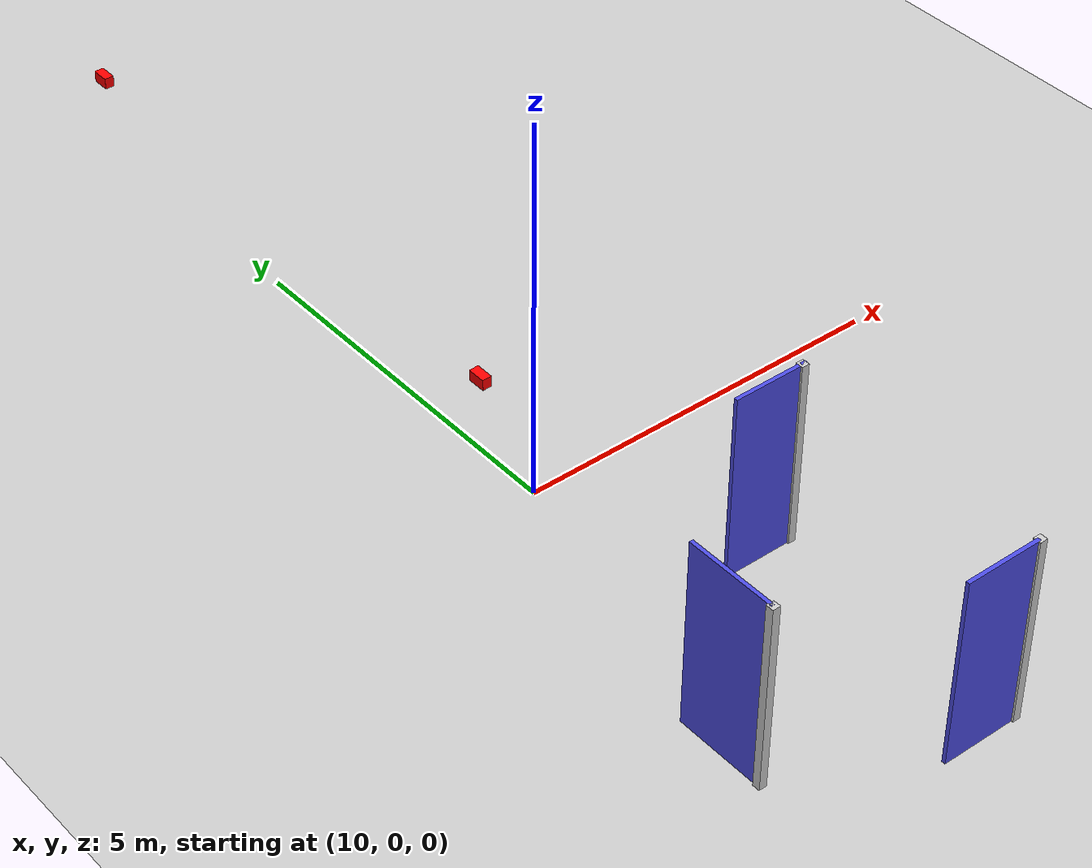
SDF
<sdf version="1.7">
 <world name="default">
  <model name="ground_plane">
   <static>1</static>
   <link name="link">
    <collision name="collision">
     <geometry><plane><normal>0 0 1</normal><size>100 100</size></plane></geometry>
     <surface><friction><ode><mu>100</mu><mu2>50</mu2></ode></friction></surface>
    </collision>
    <visual name="visual">
     <cast_shadows>0</cast_shadows>
     <geometry><plane><normal>0 0 1</normal><size>100 100</size></plane></geometry>
     <material>
      <script><uri>file://media/materials/scripts/gazebo.material</uri><name>Gazebo/Grey</name></script>
     </material>
    </visual>
   </link>
  </model>
  <model name="door_2">
   <link name="door_frame">
    <pose>0.25 -0 1.25 0 -0 0</pose>
    <kinematic>1</kinematic>
    <inertial>
     <inertia><ixx>1</ixx><ixy>0</ixy><ixz>0</ixz><iyy>1</iyy><iyz>0</iyz><izz>1</izz></inertia>
     <mass>1</mass>
    </inertial>
    <visual name="frame_visual">
     <geometry><box><size>0.1 0.1 2.5</size></box></geometry>
     <material>
      <ambient>0.7 0.7 0.7 1</ambient>
      <diffuse>0.8 0.8 0.8 1</diffuse>
      <shader type="pixel"><normal_map>__default__</normal_map></shader>
      <script><name>ModelPreview_2::door_frame::frame_visual_MATERIAL_</name><uri>__default__</uri></script>
      <specular>0 0 0 1</specular>
      <emissive>0 0 0 1</emissive>
     </material>
    </visual>
    <collision name="frame_collision">
     <geometry><box><size>0.1 0.1 2.5</size></box></geometry>
     <surface>
      <friction>
       <ode><mu>1</mu><mu2>1</mu2><fdir1>0 0 0</fdir1><slip1>0</slip1><slip2>0</slip2></ode>
       <torsional>
        <coefficient>1</coefficient>
        <patch_radius>0</patch_radius>
        <surface_radius>0</surface_radius>
        <use_patch_radius>1</use_patch_radius>
        <ode><slip>0</slip></ode>
       </torsional>
      </friction>
      <bounce><restitution_coefficient>0</restitution_coefficient><threshold>1e+06</threshold></bounce>
      <contact>
       <collide_without_contact>0</collide_without_contact>
       <collide_without_contact_bitmask>1</collide_without_contact_bitmask>
       <collide_bitmask>1</collide_bitmask>
       <ode>
        <soft_cfm>0</soft_cfm>
        <soft_erp>0.2</soft_erp>
        <kp>1e+13</kp>
        <kd>1</kd>
        <max_vel>0.01</max_vel>
        <min_depth>0</min_depth>
       </ode>
       <bullet>
        <split_impulse>1</split_impulse>
        <split_impulse_penetration_threshold>-0.01</split_impulse_penetration_threshold>
        <soft_cfm>0</soft_cfm>
        <soft_erp>0.2</soft_erp>
        <kp>1e+13</kp>
        <kd>1</kd>
       </bullet>
      </contact>
     </surface>
    </collision>
   </link>
   <link name="door">
    <kinematic>1</kinematic>
    <pose>-0.335256 -0 1.25 0 -0 0</pose>
    <inertial>
     <inertia><ixx>1.2306</ixx><ixy>0</ixy><ixz>0</ixz><iyy>1.50458</iyy><iyz>0</iyz><izz>0.27496</izz></inertia>
     <mass>2.36181</mass>
    </inertial>
    <visual name="door_visual">
     <geometry><box><size>1.1809 0.05 2.5</size></box></geometry>
     <material>
      <ambient>0.2 0.2 0.8 1</ambient>
      <diffuse>0.3 0.3 0.9 1</diffuse>
      <shader type="pixel"/>
      <script><name>ModelPreview_2::door::door_visual_MATERIAL_</name><uri>__default__</uri></script>
     </material>
    </visual>
    <collision name="door_collision">
     <geometry><box><size>1.1809 0.05 2.5</size></box></geometry>
     <surface>
      <friction>
       <ode><mu>1</mu><mu2>1</mu2><fdir1>0 0 0</fdir1><slip1>0</slip1><slip2>0</slip2></ode>
       <torsional>
        <coefficient>1</coefficient>
        <patch_radius>0</patch_radius>
        <surface_radius>0</surface_radius>
        <use_patch_radius>1</use_patch_radius>
        <ode><slip>0</slip></ode>
       </torsional>
      </friction>
      <bounce><restitution_coefficient>0</restitution_coefficient><threshold>1e+06</threshold></bounce>
      <contact>
       <collide_without_contact>0</collide_without_contact>
       <collide_without_contact_bitmask>1</collide_without_contact_bitmask>
       <collide_bitmask>1</collide_bitmask>
       <ode>
        <soft_cfm>0</soft_cfm>
        <soft_erp>0.2</soft_erp>
        <kp>1e+13</kp>
        <kd>1</kd>
        <max_vel>0.01</max_vel>
        <min_depth>0</min_depth>
       </ode>
       <bullet>
        <split_impulse>1</split_impulse>
        <split_impulse_penetration_threshold>-0.01</split_impulse_penetration_threshold>
        <soft_cfm>0</soft_cfm>
        <soft_erp>0.2</soft_erp>
        <kp>1e+13</kp>
        <kd>1</kd>
       </bullet>
      </contact>
     </surface>
    </collision>
   </link>
   <joint name="door_joint" type="prismatic">
    <parent>door_frame</parent>
    <child>door</child>
    <axis>
     <xyz>1 0 0</xyz>
     <limit><lower>0</lower><upper>2</upper><effort>-1</effort><velocity>-1</velocity></limit>
     <dynamics>
      <spring_reference>0</spring_reference>
      <spring_stiffness>0</spring_stiffness>
      <damping>0</damping>
      <friction>0</friction>
     </dynamics>
    </axis>
    <physics>
     <ode><limit><cfm>0</cfm><erp>0.2</erp></limit><suspension><cfm>0</cfm><erp>0.2</erp></suspension></ode>
    </physics>
   </joint>
   <static>0</static>
   <plugin name="door_control_plugin" filename="libdoor_control_plugin.so">
    <door_joint>door_joint</door_joint>
    <speed>1.0</speed>
    <open_target>1.0</open_target>
    <close_target>0.0</close_target>
   </plugin>
   <pose>8.96591 -4.63073 0 0 0 -1.56674</pose>
  </model>
  <model name="door_3">
   <link name="door_frame">
    <pose>0.25 0 1.25 0 -0 0</pose>
    <kinematic>1</kinematic>
    <inertial>
     <inertia><ixx>1</ixx><ixy>0</ixy><ixz>0</ixz><iyy>1</iyy><iyz>0</iyz><izz>1</izz></inertia>
     <mass>1</mass>
    </inertial>
    <visual name="frame_visual">
     <geometry><box><size>0.1 0.1 2.5</size></box></geometry>
     <material>
      <ambient>0.7 0.7 0.7 1</ambient>
      <diffuse>0.8 0.8 0.8 1</diffuse>
      <shader type="pixel"><normal_map>__default__</normal_map></shader>
      <script><name>ModelPreview_1::door_frame::frame_visual_MATERIAL_</name><uri>__default__</uri></script>
      <specular>0 0 0 1</specular>
      <emissive>0 0 0 1</emissive>
     </material>
    </visual>
    <collision name="frame_collision">
     <geometry><box><size>0.1 0.1 2.5</size></box></geometry>
     <surface>
      <friction>
       <ode><mu>1</mu><mu2>1</mu2><fdir1>0 0 0</fdir1><slip1>0</slip1><slip2>0</slip2></ode>
       <torsional>
        <coefficient>1</coefficient>
        <patch_radius>0</patch_radius>
        <surface_radius>0</surface_radius>
        <use_patch_radius>1</use_patch_radius>
        <ode><slip>0</slip></ode>
       </torsional>
      </friction>
      <bounce><restitution_coefficient>0</restitution_coefficient><threshold>1e+06</threshold></bounce>
      <contact>
       <collide_without_contact>0</collide_without_contact>
       <collide_without_contact_bitmask>1</collide_without_contact_bitmask>
       <collide_bitmask>1</collide_bitmask>
       <ode>
        <soft_cfm>0</soft_cfm>
        <soft_erp>0.2</soft_erp>
        <kp>1e+13</kp>
        <kd>1</kd>
        <max_vel>0.01</max_vel>
        <min_depth>0</min_depth>
       </ode>
       <bullet>
        <split_impulse>1</split_impulse>
        <split_impulse_penetration_threshold>-0.01</split_impulse_penetration_threshold>
        <soft_cfm>0</soft_cfm>
        <soft_erp>0.2</soft_erp>
        <kp>1e+13</kp>
        <kd>1</kd>
       </bullet>
      </contact>
     </surface>
    </collision>
   </link>
   <link name="door">
    <kinematic>1</kinematic>
    <pose>-0.261545 0 1.25 0 -0 0</pose>
    <inertial>
     <inertia>
      <ixx>0.75177</ixx>
      <ixy>0</ixy>
      <ixz>0</ixz>
      <iyy>0.814042</iyy>
      <iyz>0</iyz>
      <izz>0.062873</izz>
     </inertia>
     <mass>1.44282</mass>
    </inertial>
    <visual name="door_visual">
     <geometry><box><size>1 0.05 2.5</size></box></geometry>
     <material>
      <ambient>0.2 0.2 0.8 1</ambient>
      <diffuse>0.3 0.3 0.9 1</diffuse>
      <shader type="pixel"><normal_map>__default__</normal_map></shader>
      <script><name>ModelPreview_1::door::door_visual_MATERIAL_</name><uri>__default__</uri></script>
      <specular>0 0 0 1</specular>
      <emissive>0 0 0 1</emissive>
     </material>
    </visual>
    <collision name="door_collision">
     <geometry><box><size>1 0.05 2.5</size></box></geometry>
     <surface>
      <friction>
       <ode><mu>1</mu><mu2>1</mu2><fdir1>0 0 0</fdir1><slip1>0</slip1><slip2>0</slip2></ode>
       <torsional>
        <coefficient>1</coefficient>
        <patch_radius>0</patch_radius>
        <surface_radius>0</surface_radius>
        <use_patch_radius>1</use_patch_radius>
        <ode><slip>0</slip></ode>
       </torsional>
      </friction>
      <bounce><restitution_coefficient>0</restitution_coefficient><threshold>1e+06</threshold></bounce>
      <contact>
       <collide_without_contact>0</collide_without_contact>
       <collide_without_contact_bitmask>1</collide_without_contact_bitmask>
       <collide_bitmask>1</collide_bitmask>
       <ode>
        <soft_cfm>0</soft_cfm>
        <soft_erp>0.2</soft_erp>
        <kp>1e+13</kp>
        <kd>1</kd>
        <max_vel>0.01</max_vel>
        <min_depth>0</min_depth>
       </ode>
       <bullet>
        <split_impulse>1</split_impulse>
        <split_impulse_penetration_threshold>-0.01</split_impulse_penetration_threshold>
        <soft_cfm>0</soft_cfm>
        <soft_erp>0.2</soft_erp>
        <kp>1e+13</kp>
        <kd>1</kd>
       </bullet>
      </contact>
     </surface>
    </collision>
   </link>
   <joint name="door_joint" type="prismatic">
    <parent>door_frame</parent>
    <child>door</child>
    <axis>
     <xyz>1 0 0</xyz>
     <limit><lower>0</lower><upper>2</upper><effort>-1</effort><velocity>-1</velocity></limit>
     <dynamics>
      <spring_reference>0</spring_reference>
      <spring_stiffness>0</spring_stiffness>
      <damping>0</damping>
      <friction>0</friction>
     </dynamics>
    </axis>
    <physics>
     <ode><limit><cfm>0</cfm><erp>0.2</erp></limit><suspension><cfm>0</cfm><erp>0.2</erp></suspension></ode>
    </physics>
   </joint>
   <static>0</static>
   <plugin name="door_control_plugin" filename="libdoor_control_plugin.so">
    <door_joint>door_joint</door_joint>
    <speed>1.0</speed>
    <open_target>1.0</open_target>
    <close_target>0.0</close_target>
   </plugin>
   <pose>11.3937 -5.81972 0 0 -0 0</pose>
  </model>
  <model name="door_4">
   <link name="door_frame">
    <pose>0.25 0 1.25 0 -0 0</pose>
    <kinematic>1</kinematic>
    <inertial>
     <inertia><ixx>1</ixx><ixy>0</ixy><ixz>0</ixz><iyy>1</iyy><iyz>0</iyz><izz>1</izz></inertia>
     <mass>1</mass>
    </inertial>
    <visual name="frame_visual">
     <geometry><box><size>0.1 0.1 2.5</size></box></geometry>
     <material>
      <ambient>0.7 0.7 0.7 1</ambient>
      <diffuse>0.8 0.8 0.8 1</diffuse>
      <shader type="pixel"><normal_map>__default__</normal_map></shader>
      <script><name>ModelPreview_1::door_frame::frame_visual_MATERIAL_</name><uri>__default__</uri></script>
      <specular>0 0 0 1</specular>
      <emissive>0 0 0 1</emissive>
     </material>
    </visual>
    <collision name="frame_collision">
     <geometry><box><size>0.1 0.1 2.5</size></box></geometry>
     <surface>
      <friction>
       <ode><mu>1</mu><mu2>1</mu2><fdir1>0 0 0</fdir1><slip1>0</slip1><slip2>0</slip2></ode>
       <torsional>
        <coefficient>1</coefficient>
        <patch_radius>0</patch_radius>
        <surface_radius>0</surface_radius>
        <use_patch_radius>1</use_patch_radius>
        <ode><slip>0</slip></ode>
       </torsional>
      </friction>
      <bounce><restitution_coefficient>0</restitution_coefficient><threshold>1e+06</threshold></bounce>
      <contact>
       <collide_without_contact>0</collide_without_contact>
       <collide_without_contact_bitmask>1</collide_without_contact_bitmask>
       <collide_bitmask>1</collide_bitmask>
       <ode>
        <soft_cfm>0</soft_cfm>
        <soft_erp>0.2</soft_erp>
        <kp>1e+13</kp>
        <kd>1</kd>
        <max_vel>0.01</max_vel>
        <min_depth>0</min_depth>
       </ode>
       <bullet>
        <split_impulse>1</split_impulse>
        <split_impulse_penetration_threshold>-0.01</split_impulse_penetration_threshold>
        <soft_cfm>0</soft_cfm>
        <soft_erp>0.2</soft_erp>
        <kp>1e+13</kp>
        <kd>1</kd>
       </bullet>
      </contact>
     </surface>
    </collision>
   </link>
   <link name="door">
    <kinematic>1</kinematic>
    <pose>-0.195697 0 1.25 0 -0 0</pose>
    <inertial>
     <inertia>
      <ixx>0.971443</ixx>
      <ixy>0</ixy>
      <ixz>0</ixz>
      <iyy>1.10607</iyy>
      <iyz>0</iyz>
      <izz>0.135403</izz>
     </inertia>
     <mass>1.86443</mass>
    </inertial>
    <visual name="door_visual">
     <geometry><box><size>1 0.05 2.5</size></box></geometry>
     <material>
      <ambient>0.2 0.2 0.8 1</ambient>
      <diffuse>0.3 0.3 0.9 1</diffuse>
      <shader type="pixel"><normal_map>__default__</normal_map></shader>
      <script><name>ModelPreview_1::door::door_visual_MATERIAL_</name><uri>__default__</uri></script>
      <specular>0 0 0 1</specular>
      <emissive>0 0 0 1</emissive>
     </material>
    </visual>
    <collision name="door_collision">
     <geometry><box><size>1 0.05 2.5</size></box></geometry>
     <surface>
      <friction>
       <ode><mu>1</mu><mu2>1</mu2><fdir1>0 0 0</fdir1><slip1>0</slip1><slip2>0</slip2></ode>
       <torsional>
        <coefficient>1</coefficient>
        <patch_radius>0</patch_radius>
        <surface_radius>0</surface_radius>
        <use_patch_radius>1</use_patch_radius>
        <ode><slip>0</slip></ode>
       </torsional>
      </friction>
      <bounce><restitution_coefficient>0</restitution_coefficient><threshold>1e+06</threshold></bounce>
      <contact>
       <collide_without_contact>0</collide_without_contact>
       <collide_without_contact_bitmask>1</collide_without_contact_bitmask>
       <collide_bitmask>1</collide_bitmask>
       <ode>
        <soft_cfm>0</soft_cfm>
        <soft_erp>0.2</soft_erp>
        <kp>1e+13</kp>
        <kd>1</kd>
        <max_vel>0.01</max_vel>
        <min_depth>0</min_depth>
       </ode>
       <bullet>
        <split_impulse>1</split_impulse>
        <split_impulse_penetration_threshold>-0.01</split_impulse_penetration_threshold>
        <soft_cfm>0</soft_cfm>
        <soft_erp>0.2</soft_erp>
        <kp>1e+13</kp>
        <kd>1</kd>
       </bullet>
      </contact>
     </surface>
    </collision>
   </link>
   <joint name="door_joint" type="prismatic">
    <parent>door_frame</parent>
    <child>door</child>
    <axis>
     <xyz>1 0 0</xyz>
     <limit><lower>0</lower><upper>2</upper><effort>-1</effort><velocity>-1</velocity></limit>
     <dynamics>
      <spring_reference>0</spring_reference>
      <spring_stiffness>0</spring_stiffness>
      <damping>0</damping>
      <friction>0</friction>
     </dynamics>
    </axis>
    <physics>
     <ode><limit><cfm>0</cfm><erp>0.2</erp></limit><suspension><cfm>0</cfm><erp>0.2</erp></suspension></ode>
    </physics>
   </joint>
   <static>0</static>
   <plugin name="door_control_plugin" filename="libdoor_control_plugin.so">
    <door_joint>door_joint</door_joint>
    <speed>1.0</speed>
    <open_target>1.0</open_target>
    <close_target>0.0</close_target>
   </plugin>
   <pose>11.452 -2.37137 0 0 -0 0</pose>
  </model>
  <model name="Lidar_2">
   <link name="link_1">
    <inertial>
     <mass>0.00014111</mass>
     <inertia><ixx>7e-08</ixx><ixy>0</ixy><ixz>0</ixz><iyy>7e-08</iyy><iyz>0</iyz><izz>6e-08</izz></inertia>
    </inertial>
    <visual name="visual">
     <geometry><box><size>0.048286 0.048861 0.059852</size></box></geometry>
     <material>
      <lighting>1</lighting>
      <script><uri>file://media/materials/scripts/gazebo.material</uri><name>Gazebo/Grey</name></script>
      <shader type="pixel"><normal_map>__default__</normal_map></shader>
      <ambient>1 0 0 1</ambient>
      <diffuse>0.7 0.7 0.7 1</diffuse>
      <specular>0.01 0.01 0.01 1</specular>
      <emissive>0 0 0 1</emissive>
     </material>
    </visual>
    <collision name="collision">
     <geometry><box><size>0.048286 0.048861 0.059852</size></box></geometry>
     <surface>
      <friction>
       <ode><mu>1</mu><mu2>1</mu2><fdir1>0 0 0</fdir1><slip1>0</slip1><slip2>0</slip2></ode>
       <torsional>
        <coefficient>1</coefficient>
        <patch_radius>0</patch_radius>
        <surface_radius>0</surface_radius>
        <use_patch_radius>1</use_patch_radius>
        <ode><slip>0</slip></ode>
       </torsional>
      </friction>
      <bounce><restitution_coefficient>0</restitution_coefficient><threshold>1e+06</threshold></bounce>
      <contact>
       <collide_without_contact>0</collide_without_contact>
       <collide_without_contact_bitmask>1</collide_without_contact_bitmask>
       <collide_bitmask>1</collide_bitmask>
       <ode>
        <soft_cfm>0</soft_cfm>
        <soft_erp>0.2</soft_erp>
        <kp>1e+13</kp>
        <kd>1</kd>
        <max_vel>0.01</max_vel>
        <min_depth>0</min_depth>
       </ode>
       <bullet>
        <split_impulse>1</split_impulse>
        <split_impulse_penetration_threshold>-0.01</split_impulse_penetration_threshold>
        <soft_cfm>0</soft_cfm>
        <soft_erp>0.2</soft_erp>
        <kp>1e+13</kp>
        <kd>1</kd>
       </bullet>
      </contact>
     </surface>
    </collision>
   </link>
   <static>0</static>
   <pose>9.018 -4.57279 0.029926 1e-06 0 1.56291</pose>
  </model>
  <model name="Lidar_4">
   <link name="link_1">
    <inertial>
     <mass>0.00014111</mass>
     <inertia><ixx>7e-08</ixx><ixy>0</ixy><ixz>0</ixz><iyy>7e-08</iyy><iyz>0</iyz><izz>6e-08</izz></inertia>
    </inertial>
    <visual name="visual">
     <geometry><box><size>0.048286 0.048861 0.059852</size></box></geometry>
     <material>
      <lighting>1</lighting>
      <script><uri>file://media/materials/scripts/gazebo.material</uri><name>Gazebo/Grey</name></script>
      <shader type="pixel"><normal_map>__default__</normal_map></shader>
      <ambient>1 0 0 1</ambient>
      <diffuse>0.7 0.7 0.7 1</diffuse>
      <specular>0.01 0.01 0.01 1</specular>
      <emissive>0 0 0 1</emissive>
     </material>
    </visual>
    <collision name="collision">
     <geometry><box><size>0.048286 0.048861 0.059852</size></box></geometry>
     <surface>
      <friction>
       <ode><mu>1</mu><mu2>1</mu2><fdir1>0 0 0</fdir1><slip1>0</slip1><slip2>0</slip2></ode>
       <torsional>
        <coefficient>1</coefficient>
        <patch_radius>0</patch_radius>
        <surface_radius>0</surface_radius>
        <use_patch_radius>1</use_patch_radius>
        <ode><slip>0</slip></ode>
       </torsional>
      </friction>
      <bounce><restitution_coefficient>0</restitution_coefficient><threshold>1e+06</threshold></bounce>
      <contact>
       <collide_without_contact>0</collide_without_contact>
       <collide_without_contact_bitmask>1</collide_without_contact_bitmask>
       <collide_bitmask>1</collide_bitmask>
       <ode>
        <soft_cfm>0</soft_cfm>
        <soft_erp>0.2</soft_erp>
        <kp>1e+13</kp>
        <kd>1</kd>
        <max_vel>0.01</max_vel>
        <min_depth>0</min_depth>
       </ode>
       <bullet>
        <split_impulse>1</split_impulse>
        <split_impulse_penetration_threshold>-0.01</split_impulse_penetration_threshold>
        <soft_cfm>0</soft_cfm>
        <soft_erp>0.2</soft_erp>
        <kp>1e+13</kp>
        <kd>1</kd>
       </bullet>
      </contact>
     </surface>
    </collision>
   </link>
   <static>0</static>
   <pose>10.8069 -2.42857 0.029926 0 -0 0.175968</pose>
  </model>
  <model name="Lidar_3">
   <link name="link_1">
    <inertial>
     <mass>0.00014111</mass>
     <inertia><ixx>7e-08</ixx><ixy>0</ixy><ixz>0</ixz><iyy>7e-08</iyy><iyz>0</iyz><izz>6e-08</izz></inertia>
    </inertial>
    <visual name="visual">
     <geometry><box><size>0.048286 0.048861 0.059852</size></box></geometry>
     <material>
      <lighting>1</lighting>
      <script><uri>file://media/materials/scripts/gazebo.material</uri><name>Gazebo/Grey</name></script>
      <shader type="pixel"><normal_map>__default__</normal_map></shader>
      <ambient>1 0 0 1</ambient>
      <diffuse>0.7 0.7 0.7 1</diffuse>
      <specular>0.01 0.01 0.01 1</specular>
      <emissive>0 0 0 1</emissive>
     </material>
    </visual>
    <collision name="collision">
     <geometry><box><size>0.048286 0.048861 0.059852</size></box></geometry>
     <surface>
      <friction>
       <ode><mu>1</mu><mu2>1</mu2><fdir1>0 0 0</fdir1><slip1>0</slip1><slip2>0</slip2></ode>
       <torsional>
        <coefficient>1</coefficient>
        <patch_radius>0</patch_radius>
        <surface_radius>0</surface_radius>
        <use_patch_radius>1</use_patch_radius>
        <ode><slip>0</slip></ode>
       </torsional>
      </friction>
      <bounce><restitution_coefficient>0</restitution_coefficient><threshold>1e+06</threshold></bounce>
      <contact>
       <collide_without_contact>0</collide_without_contact>
       <collide_without_contact_bitmask>1</collide_without_contact_bitmask>
       <collide_bitmask>1</collide_bitmask>
       <ode>
        <soft_cfm>0</soft_cfm>
        <soft_erp>0.2</soft_erp>
        <kp>1e+13</kp>
        <kd>1</kd>
        <max_vel>0.01</max_vel>
        <min_depth>0</min_depth>
       </ode>
       <bullet>
        <split_impulse>1</split_impulse>
        <split_impulse_penetration_threshold>-0.01</split_impulse_penetration_threshold>
        <soft_cfm>0</soft_cfm>
        <soft_erp>0.2</soft_erp>
        <kp>1e+13</kp>
        <kd>1</kd>
       </bullet>
      </contact>
     </surface>
    </collision>
   </link>
   <static>0</static>
   <pose>10.7527 -5.77066 0.029927 2.6e-05 -2e-06 0.012534</pose>
  </model>
  <model name="Camera_3">
   <link name="link_1">
    <inertial>
     <mass>0.00014152</mass>
     <inertia><ixx>8.3e-07</ixx><ixy>0</ixy><ixz>0</ixz><iyy>4e-07</iyy><iyz>0</iyz><izz>7.7e-07</izz></inertia>
    </inertial>
    <gravity>0</gravity>
    <visual name="visual">
     <geometry><box><size>0.119276 0.225925 0.14044</size></box></geometry>
     <material>
      <lighting>1</lighting>
      <script><uri>file://media/materials/scripts/gazebo.material</uri><name>Gazebo/Grey</name></script>
      <shader type="pixel"><normal_map>__default__</normal_map></shader>
      <ambient>1 0 0 1</ambient>
      <diffuse>0.7 0.7 0.7 1</diffuse>
      <specular>0.01 0.01 0.01 1</specular>
      <emissive>0 0 0 1</emissive>
     </material>
    </visual>
    <collision name="collision">
     <geometry><box><size>0.119276 0.225925 0.14044</size></box></geometry>
     <surface>
      <friction>
       <ode><mu>1</mu><mu2>1</mu2><fdir1>0 0 0</fdir1><slip1>0</slip1><slip2>0</slip2></ode>
       <torsional>
        <coefficient>1</coefficient>
        <patch_radius>0</patch_radius>
        <surface_radius>0</surface_radius>
        <use_patch_radius>1</use_patch_radius>
        <ode><slip>0</slip></ode>
       </torsional>
      </friction>
      <bounce><restitution_coefficient>0</restitution_coefficient><threshold>1e+06</threshold></bounce>
      <contact>
       <collide_without_contact>0</collide_without_contact>
       <collide_without_contact_bitmask>1</collide_without_contact_bitmask>
       <collide_bitmask>1</collide_bitmask>
       <ode>
        <soft_cfm>0</soft_cfm>
        <soft_erp>0.2</soft_erp>
        <kp>1e+13</kp>
        <kd>1</kd>
        <max_vel>0.01</max_vel>
        <min_depth>0</min_depth>
       </ode>
       <bullet>
        <split_impulse>1</split_impulse>
        <split_impulse_penetration_threshold>-0.01</split_impulse_penetration_threshold>
        <soft_cfm>0</soft_cfm>
        <soft_erp>0.2</soft_erp>
        <kp>1e+13</kp>
        <kd>1</kd>
       </bullet>
      </contact>
     </surface>
    </collision>
    <sensor name="camera_sensor3" type="camera">
     <update_rate>30</update_rate>
     <camera>
      <horizontal_fov>2.5</horizontal_fov>
      <image><width>800</width><height>600</height><format>R8G8B8</format></image>
      <clip><near>0.1</near><far>100</far></clip>
      <distortion><k1>-0.3</k1><k2>0.1</k2><p1>0</p1><p2>0</p2></distortion>
     </camera>
     <plugin name="camera_plugin" filename="libcamera_plugin.so"/>
    </sensor>
   </link>
   <static>1</static>
   <pose>9.1133 -0.190201 2.2383 0.006874 -0.032728 0.004643</pose>
  </model>
  <model name="Camera_4">
   <link name="link_1">
    <inertial>
     <mass>0.00014152</mass>
     <inertia><ixx>8.3e-07</ixx><ixy>0</ixy><ixz>0</ixz><iyy>4e-07</iyy><iyz>0</iyz><izz>7.7e-07</izz></inertia>
    </inertial>
    <gravity>0</gravity>
    <visual name="visual">
     <geometry><box><size>0.119276 0.225925 0.14044</size></box></geometry>
     <material>
      <lighting>1</lighting>
      <script><uri>file://media/materials/scripts/gazebo.material</uri><name>Gazebo/Grey</name></script>
      <shader type="pixel"><normal_map>__default__</normal_map></shader>
      <ambient>1 0 0 1</ambient>
      <diffuse>0.7 0.7 0.7 1</diffuse>
      <specular>0.01 0.01 0.01 1</specular>
      <emissive>0 0 0 1</emissive>
     </material>
    </visual>
    <collision name="collision">
     <geometry><box><size>0.119276 0.225925 0.14044</size></box></geometry>
     <surface>
      <friction>
       <ode><mu>1</mu><mu2>1</mu2><fdir1>0 0 0</fdir1><slip1>0</slip1><slip2>0</slip2></ode>
       <torsional>
        <coefficient>1</coefficient>
        <patch_radius>0</patch_radius>
        <surface_radius>0</surface_radius>
        <use_patch_radius>1</use_patch_radius>
        <ode><slip>0</slip></ode>
       </torsional>
      </friction>
      <bounce><restitution_coefficient>0</restitution_coefficient><threshold>1e+06</threshold></bounce>
      <contact>
       <collide_without_contact>0</collide_without_contact>
       <collide_without_contact_bitmask>1</collide_without_contact_bitmask>
       <collide_bitmask>1</collide_bitmask>
       <ode>
        <soft_cfm>0</soft_cfm>
        <soft_erp>0.2</soft_erp>
        <kp>1e+13</kp>
        <kd>1</kd>
        <max_vel>0.01</max_vel>
        <min_depth>0</min_depth>
       </ode>
       <bullet>
        <split_impulse>1</split_impulse>
        <split_impulse_penetration_threshold>-0.01</split_impulse_penetration_threshold>
        <soft_cfm>0</soft_cfm>
        <soft_erp>0.2</soft_erp>
        <kp>1e+13</kp>
        <kd>1</kd>
       </bullet>
      </contact>
     </surface>
    </collision>
    <sensor name="camera_sensor4" type="camera">
     <update_rate>30</update_rate>
     <camera>
      <horizontal_fov>2.5</horizontal_fov>
      <image><width>800</width><height>600</height><format>R8G8B8</format></image>
      <clip><near>0.1</near><far>100</far></clip>
      <distortion><k1>-0.3</k1><k2>0.1</k2><p1>0</p1><p2>0</p2></distortion>
     </camera>
     <plugin name="camera_plugin" filename="libcamera_plugin.so"/>
    </sensor>
   </link>
   <static>1</static>
   <pose>9.11064 7.1731 2.25 0 -0 0</pose>
  </model>
 </world>
</sdf>
